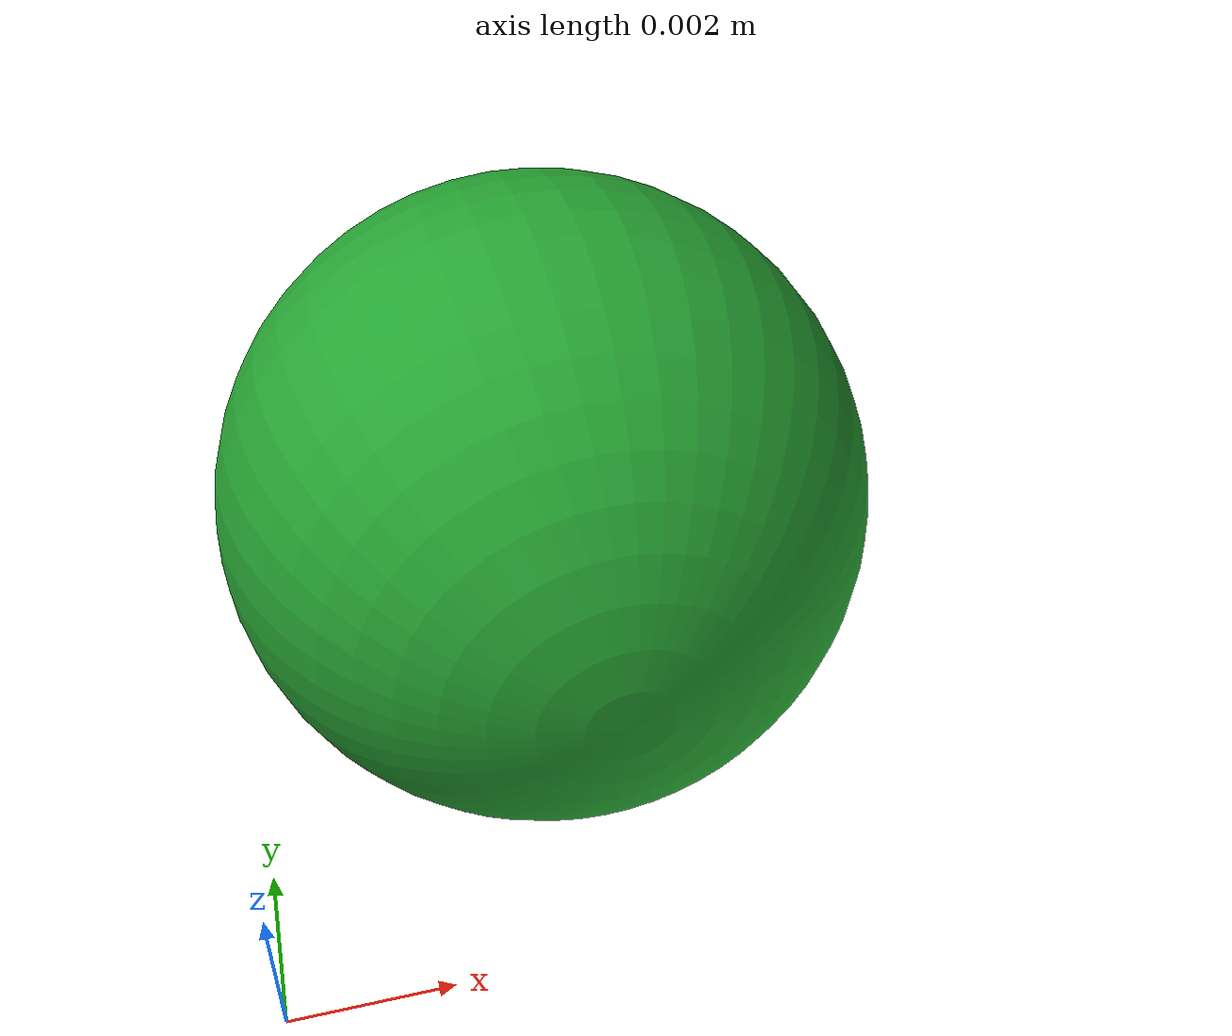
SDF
<?xml version="1.0" ?>
<sdf version="1.5">
  <model name="seed">
    <static>false</static>
    <link name="link">
      <collision name="collision">
        <geometry>
          <mesh>
            <uri>model://seed/meshes/seed.STL</uri>
            <scale>0.004 0.004 0.004</scale>
          </mesh>
        </geometry>
        <surface>
          <friction>
            <ode>
              <mu>10000</mu>
              <mu2>10000</mu2>
            </ode>
          </friction>
        </surface>
      </collision>
      <visual name="visual">
        <geometry>
          <mesh>
            <uri>model://seed/meshes/seed.STL</uri>
            <scale>0.004 0.004 0.004</scale>
          </mesh>
        </geometry>
        <material>
          <script>
            <uri>file://media/materials/scripts/gazebo.material</uri>
            <name>Gazebo/Green</name>
          </script>
        </material>
      </visual>
    </link>
  </model>
</sdf>
